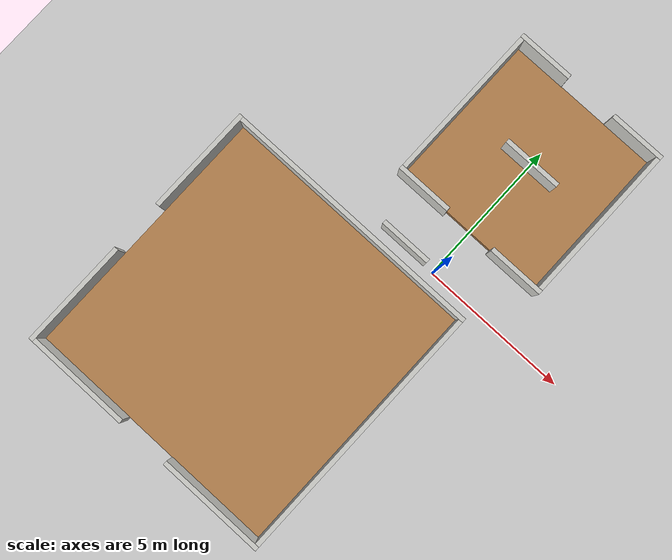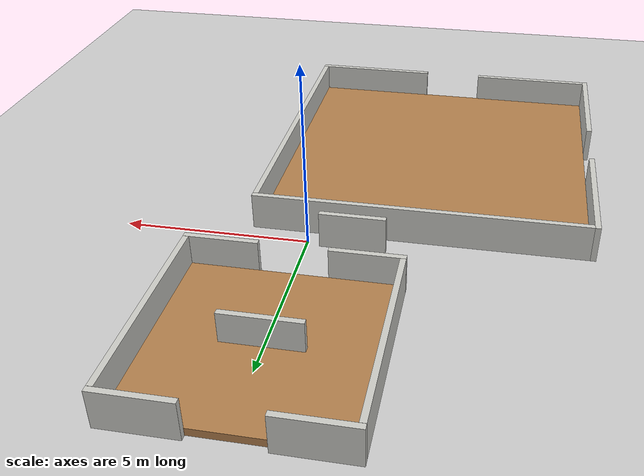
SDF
<sdf version="1.6">
 <world name="default">
  <light name="sun" type="directional">
   <pose>0 0 10 0 -0 0</pose>
   <diffuse>0.8 0.8 0.8 1</diffuse>
   <specular>0.1 0.1 0.1 1</specular>
   <attenuation>
    <range>1000</range>
    <constant>0.9</constant>
    <linear>0.01</linear>
    <quadratic>0.001</quadratic>
   </attenuation>
   <direction>-0.5 0.5 -1</direction>
  </light>
  <model name="ground_plane">
   <static>1</static>
   <link name="link">
    <collision name="collision">
     <geometry><plane><normal>0 0 1</normal><size>100 100</size></plane></geometry>
     <surface><friction><ode><mu>100</mu><mu2>50</mu2></ode></friction></surface>
    </collision>
    <visual name="visual">
     <cast_shadows>0</cast_shadows>
     <geometry><plane><normal>0 0 1</normal><size>100 100</size></plane></geometry>
     <material>
      <script><uri>file://media/materials/scripts/concrete.material</uri><name>Concrete/1</name></script>
     </material>
    </visual>
   </link>
  </model>
  <gravity>0 0 -9.8</gravity>
  <magnetic_field>6e-06 2.3e-05 -4.2e-05</magnetic_field>
  <atmosphere type="adiabatic"/>
  <physics name="default_physics" default="0" type="ode">
   <max_step_size>0.001</max_step_size>
   <real_time_factor>1</real_time_factor>
   <real_time_update_rate>1000</real_time_update_rate>
  </physics>
  <scene><ambient>0.4 0.4 0.4 1</ambient><background>0.7 0.7 0.7 1</background><shadows>1</shadows></scene>
  <spherical_coordinates>
   <surface_model>EARTH_WGS84</surface_model>
   <latitude_deg>0</latitude_deg>
   <longitude_deg>0</longitude_deg>
   <elevation>0</elevation>
   <heading_deg>0</heading_deg>
  </spherical_coordinates>
  <model name="obstacle_wall_full">
   <static>1</static>
   <pose>-1.2141 0.058129 0 0 -0 0</pose>
   <link name="Wall">
    <collision name="Wall_Collision">
     <geometry><box><size>1.75 0.15 1</size></box></geometry>
     <pose>0 0 0.5 0 -0 0</pose>
    </collision>
    <visual name="Wall_Visual">
     <pose>0 0 0.5 0 -0 0</pose>
     <geometry><box><size>1.75 0.15 1</size></box></geometry>
     <material>
      <script><uri>file://media/materials/scripts/gazebo.material</uri><name>Gazebo/CeilingTiled</name></script>
      <ambient>1 0.764706 0.305882 1</ambient>
     </material>
    </visual>
   </link>
  </model>
  <model name="room_3x3_split">
   <static>1</static>
   <pose>-0.055879 4.30615 0 0 -0 0</pose>
   <link name="Floor">
    <collision name="Floor_Collision">
     <geometry><box><size>5.26 5.25 0.2</size></box></geometry>
     <pose>0 0 0.1 0 -0 0</pose>
    </collision>
    <visual name="Floor_Visual">
     <pose>0 0 0.1 0 -0 0</pose>
     <geometry><box><size>5.26 5.25 0.2</size></box></geometry>
     <material>
      <script><uri>file://media/materials/scripts/gazebo.material</uri><name>Gazebo/Wood</name></script>
      <ambient>1 0.764706 0.305882 1</ambient>
     </material>
    </visual>
    <pose>-0.001194 0.003047 0 0 -0 1.5708</pose>
   </link>
   <link name="Wall_1">
    <collision name="Wall_1_Collision">
     <geometry><box><size>5.25 0.15 1</size></box></geometry>
     <pose>0 0 0.5 0 -0 0</pose>
    </collision>
    <visual name="Wall_1_Visual">
     <pose>0 0 0.5 0 -0 0</pose>
     <geometry><box><size>5.25 0.15 1</size></box></geometry>
     <material>
      <script><uri>file://media/materials/scripts/gazebo.material</uri><name>Gazebo/CeilingTiled</name></script>
      <ambient>1 0.764706 0.305882 1</ambient>
     </material>
    </visual>
    <pose>-2.69653 -0.003278 0 0 0 -1.5708</pose>
   </link>
   <link name="Wall_2">
    <collision name="Wall_2_Collision">
     <geometry><box><size>5.25 0.15 1</size></box></geometry>
     <pose>0 0 0.5 0 -0 0</pose>
    </collision>
    <visual name="Wall_2_Visual">
     <pose>0 0 0.5 0 -0 0</pose>
     <geometry><box><size>5.25 0.15 1</size></box></geometry>
     <material>
      <script><uri>file://media/materials/scripts/gazebo.material</uri><name>Gazebo/CeilingTiled</name></script>
      <ambient>1 0.764706 0.305882 1</ambient>
     </material>
    </visual>
    <pose>2.69688 -0.000452 0 0 0 -1.5708</pose>
   </link>
   <link name="Wall_3">
    <collision name="Wall_3_Collision">
     <geometry><box><size>1.9 0.15 1</size></box></geometry>
     <pose>0 0 0.5 0 -0 0</pose>
    </collision>
    <visual name="Wall_3_Visual">
     <pose>0 0 0.5 0 -0 0</pose>
     <geometry><box><size>1.9 0.15 1</size></box></geometry>
     <material>
      <script><uri>file://media/materials/scripts/gazebo.material</uri><name>Gazebo/CeilingTiled</name></script>
      <ambient>1 0.764706 0.305882 1</ambient>
     </material>
    </visual>
    <pose>-1.82279 -2.70217 0 0 -0 0</pose>
   </link>
   <link name="Wall_4">
    <collision name="Wall_4_Collision">
     <geometry><box><size>1.9 0.15 1</size></box></geometry>
     <pose>0 0 0.5 0 -0 0</pose>
    </collision>
    <visual name="Wall_4_Visual">
     <pose>0 0 0.5 0 -0 0</pose>
     <geometry><box><size>1.9 0.15 1</size></box></geometry>
     <material>
      <script><uri>file://media/materials/scripts/gazebo.material</uri><name>Gazebo/CeilingTiled</name></script>
      <ambient>1 0.764706 0.305882 1</ambient>
     </material>
    </visual>
    <pose>-1.82219 2.69878 0 0 -0 0</pose>
   </link>
   <link name="Wall_5">
    <collision name="Wall_5_Collision">
     <geometry><box><size>1.9 0.15 1</size></box></geometry>
     <pose>0 0 0.5 0 -0 0</pose>
    </collision>
    <visual name="Wall_5_Visual">
     <pose>0 0 0.5 0 -0 0</pose>
     <geometry><box><size>1.9 0.15 1</size></box></geometry>
     <material>
      <script><uri>file://media/materials/scripts/gazebo.material</uri><name>Gazebo/CeilingTiled</name></script>
      <ambient>1 0.764706 0.305882 1</ambient>
     </material>
    </visual>
    <pose>1.82194 2.70217 0 0 -0 0</pose>
   </link>
   <link name="Wall_6">
    <collision name="Wall_6_Collision">
     <geometry><box><size>1.9 0.15 1</size></box></geometry>
     <pose>0 0 0.5 0 -0 0</pose>
    </collision>
    <visual name="Wall_6_Visual">
     <pose>0 0 0.5 0 -0 0</pose>
     <geometry><box><size>1.9 0.15 1</size></box></geometry>
     <material>
      <script><uri>file://media/materials/scripts/gazebo.material</uri><name>Gazebo/CeilingTiled</name></script>
      <ambient>1 0.764706 0.305882 1</ambient>
     </material>
    </visual>
    <pose>1.82279 -2.70173 0 0 -0 0</pose>
   </link>
   <link name="Wall_7">
    <collision name="Wall_7_Collision">
     <geometry><box><size>2 0.15 1</size></box></geometry>
     <pose>0 0 0.5 0 -0 0</pose>
    </collision>
    <visual name="Wall_7_Visual">
     <pose>0 0 0.5 0 -0 0</pose>
     <geometry><box><size>2 0.15 1</size></box></geometry>
     <material>
      <script><uri>file://media/materials/scripts/gazebo.material</uri><name>Gazebo/CeilingTiled</name></script>
      <ambient>1 0.764706 0.305882 1</ambient>
     </material>
    </visual>
    <pose>0.033144 0.01482 0 0 -0 0</pose>
   </link>
  </model>
  <model name="room_5x5_right">
   <static>1</static>
   <pose>-2.91025 -4.97666 0 0 -0 0</pose>
   <link name="Floor">
    <collision name="Floor_Collision">
     <geometry><box><size>8.76 8.75 0.2</size></box></geometry>
     <pose>0 0 0.1 0 -0 0</pose>
    </collision>
    <visual name="Floor_Visual">
     <pose>0 0 0.1 0 -0 0</pose>
     <geometry><box><size>8.76 8.75 0.2</size></box></geometry>
     <material>
      <script><uri>file://media/materials/scripts/gazebo.material</uri><name>Gazebo/Wood</name></script>
      <ambient>1 0.764706 0.305882 1</ambient>
     </material>
    </visual>
    <pose>0.000485 -0.004173 0 0 -0 1.5708</pose>
   </link>
   <link name="Wall_1">
    <collision name="Wall_1_Collision">
     <geometry><box><size>8.75 0.15 1</size></box></geometry>
     <pose>0 0 0.5 0 -0 0</pose>
    </collision>
    <visual name="Wall_1_Visual">
     <pose>0 0 0.5 0 -0 0</pose>
     <geometry><box><size>8.75 0.15 1</size></box></geometry>
     <material>
      <script><uri>file://media/materials/scripts/gazebo.material</uri><name>Gazebo/CeilingTiled</name></script>
      <ambient>1 0.764706 0.305882 1</ambient>
     </material>
    </visual>
    <pose>4.44912 -0.000431 0 0 0 -1.5708</pose>
   </link>
   <link name="Wall_2">
    <collision name="Wall_2_Collision">
     <geometry><box><size>3.65 0.15 1</size></box></geometry>
     <pose>0 0 0.5 0 -0 0</pose>
    </collision>
    <visual name="Wall_2_Visual">
     <pose>0 0 0.5 0 -0 0</pose>
     <geometry><box><size>3.65 0.15 1</size></box></geometry>
     <material>
      <script><uri>file://media/materials/scripts/gazebo.material</uri><name>Gazebo/CeilingTiled</name></script>
      <ambient>1 0.764706 0.305882 1</ambient>
     </material>
    </visual>
    <pose>-4.44961 2.70076 0 0 0 -1.5708</pose>
   </link>
   <link name="Wall_3">
    <collision name="Wall_3_Collision">
     <geometry><box><size>3.65 0.15 1</size></box></geometry>
     <pose>0 0 0.5 0 -0 0</pose>
    </collision>
    <visual name="Wall_3_Visual">
     <pose>0 0 0.5 0 -0 0</pose>
     <geometry><box><size>3.65 0.15 1</size></box></geometry>
     <material>
      <script><uri>file://media/materials/scripts/gazebo.material</uri><name>Gazebo/CeilingTiled</name></script>
      <ambient>1 0.764706 0.305882 1</ambient>
     </material>
    </visual>
    <pose>2.69961 -4.45076 0 0 -0 0</pose>
   </link>
   <link name="Wall_4">
    <collision name="Wall_4_Collision">
     <geometry><box><size>8.90028 0.15 1</size></box></geometry>
     <pose>0 0 0.5 0 -0 0</pose>
    </collision>
    <visual name="Wall_4_Visual">
     <pose>0 0 0.5 0 -0 0</pose>
     <geometry><box><size>8.90028 0.15 1</size></box></geometry>
     <material>
      <script><uri>file://media/materials/scripts/gazebo.material</uri><name>Gazebo/CeilingTiled</name></script>
      <ambient>1 0.764706 0.305882 1</ambient>
     </material>
    </visual>
    <pose>0.074346 4.45022 0 0 0 -6.5e-05</pose>
   </link>
   <link name="Wall_5">
    <collision name="Wall_5_Collision">
     <geometry><box><size>3.5 0.15 1</size></box></geometry>
     <pose>0 0 0.5 0 -0 0</pose>
    </collision>
    <visual name="Wall_5_Visual">
     <pose>0 0 0.5 0 -0 0</pose>
     <geometry><box><size>3.5 0.15 1</size></box></geometry>
     <material>
      <script><uri>file://media/materials/scripts/gazebo.material</uri><name>Gazebo/CeilingTiled</name></script>
      <ambient>1 0.764706 0.305882 1</ambient>
     </material>
    </visual>
    <pose>-2.62383 -4.4498 0 0 -0 0</pose>
   </link>
   <link name="Wall_6">
    <collision name="Wall_6_Collision">
     <geometry><box><size>3.65 0.15 1</size></box></geometry>
     <pose>0 0 0.5 0 -0 0</pose>
    </collision>
    <visual name="Wall_6_Visual">
     <pose>0 0 0.5 0 -0 0</pose>
     <geometry><box><size>3.65 0.15 1</size></box></geometry>
     <material>
      <script><uri>file://media/materials/scripts/gazebo.material</uri><name>Gazebo/CeilingTiled</name></script>
      <ambient>1 0.764706 0.305882 1</ambient>
     </material>
    </visual>
    <pose>-4.44941 -2.70044 0 0 0 -1.5708</pose>
   </link>
  </model>
 </world>
</sdf>
